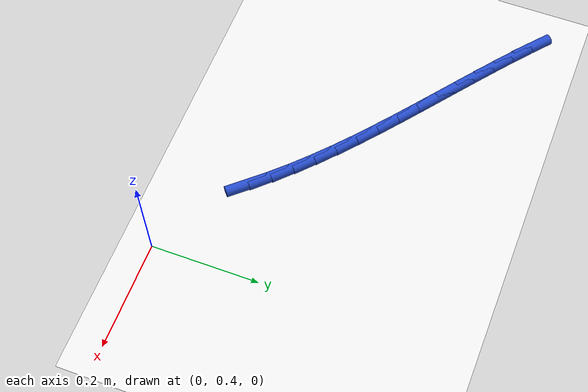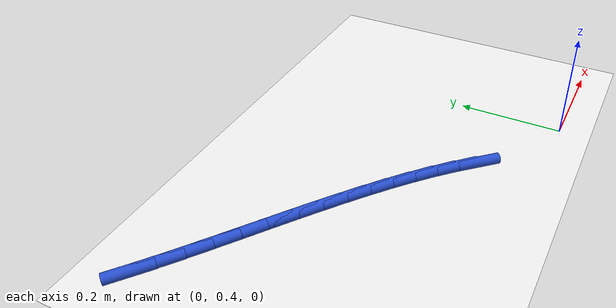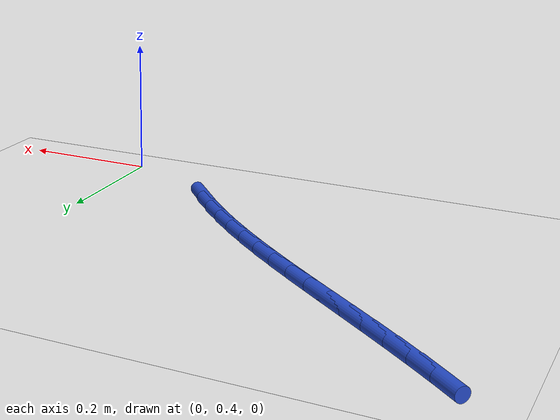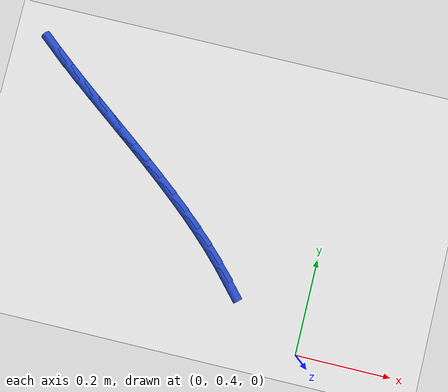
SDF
<sdf version="1.6">
 <world name="default">
  <model name="ground_plane">
   <static>1</static>
   <link name="link">
    <collision name="collision">
     <geometry><plane><normal>0 0 1</normal><size>100 100</size></plane></geometry>
     <surface><friction><ode><mu>100</mu><mu2>50</mu2></ode></friction></surface>
    </collision>
    <visual name="visual">
     <cast_shadows>0</cast_shadows>
     <geometry><plane><normal>0 0 1</normal><size>100 100</size></plane></geometry>
     <material>
      <script><uri>file://media/materials/scripts/gazebo.material</uri><name>Gazebo/WhiteGlow</name></script>
     </material>
    </visual>
   </link>
  </model>
  <model name="line">
   <link name="link_13">
    <pose>-0.16780703248059795 0.5103948826643905 0.01 0 1.57 -0.8433225476517466</pose>
    <collision name="collision">
     <geometry><cylinder><radius>0.01</radius><length>0.08</length></cylinder></geometry>
    </collision>
    <visual name="visual">
     <material>
      <script><name>Gazebo/Blue</name><uri>file://media/materials/scripts/gazebo.material</uri></script>
     </material>
     <geometry><cylinder><radius>0.01</radius><length>0.08</length></cylinder></geometry>
    </visual>
   </link>
   <link name="link_14">
    <pose>-0.19561371793833351 0.5416250725158849 0.01 0 1.57 -0.80138178652893</pose>
    <collision name="collision">
     <geometry><cylinder><radius>0.01</radius><length>0.08</length></cylinder></geometry>
    </collision>
    <visual name="visual">
     <material>
      <script><name>Gazebo/Blue</name><uri>file://media/materials/scripts/gazebo.material</uri></script>
     </material>
     <geometry><cylinder><radius>0.01</radius><length>0.08</length></cylinder></geometry>
    </visual>
   </link>
   <link name="link_15">
    <pose>-0.2249537302056891 0.5719183215355734 0.01 0 1.57 -0.7649317041077852</pose>
    <collision name="collision">
     <geometry><cylinder><radius>0.01</radius><length>0.08</length></cylinder></geometry>
    </collision>
    <visual name="visual">
     <material>
      <script><name>Gazebo/Blue</name><uri>file://media/materials/scripts/gazebo.material</uri></script>
     </material>
     <geometry><cylinder><radius>0.01</radius><length>0.08</length></cylinder></geometry>
    </visual>
   </link>
   <link name="link_16">
    <pose>-0.2556542786188917 0.6013872419924183 0.01 0 1.57 -0.7338145800664079</pose>
    <collision name="collision">
     <geometry><cylinder><radius>0.01</radius><length>0.08</length></cylinder></geometry>
    </collision>
    <visual name="visual">
     <material>
      <script><name>Gazebo/Blue</name><uri>file://media/materials/scripts/gazebo.material</uri></script>
     </material>
     <geometry><cylinder><radius>0.01</radius><length>0.08</length></cylinder></geometry>
    </visual>
   </link>
   <link name="link_17">
    <pose>-0.2875425725141685 0.6301444461553818 0.01 0 1.57 -0.7078428669132037</pose>
    <collision name="collision">
     <geometry><cylinder><radius>0.01</radius><length>0.08</length></cylinder></geometry>
    </collision>
    <visual name="visual">
     <material>
      <script><name>Gazebo/Blue</name><uri>file://media/materials/scripts/gazebo.material</uri></script>
     </material>
     <geometry><cylinder><radius>0.01</radius><length>0.08</length></cylinder></geometry>
    </visual>
   </link>
   <link name="link_18">
    <pose>-0.32044582122774656 0.6583025462934258 0.01 0 1.57 -0.6868242028342659</pose>
    <collision name="collision">
     <geometry><cylinder><radius>0.01</radius><length>0.08</length></cylinder></geometry>
    </collision>
    <visual name="visual">
     <material>
      <script><name>Gazebo/Blue</name><uri>file://media/materials/scripts/gazebo.material</uri></script>
     </material>
     <geometry><cylinder><radius>0.01</radius><length>0.08</length></cylinder></geometry>
    </visual>
   </link>
   <link name="link_19">
    <pose>-0.35419123409585307 0.6859741546755121 0.01 0 1.57 -0.6705794047479512</pose>
    <collision name="collision">
     <geometry><cylinder><radius>0.01</radius><length>0.08</length></cylinder></geometry>
    </collision>
    <visual name="visual">
     <material>
      <script><name>Gazebo/Blue</name><uri>file://media/materials/scripts/gazebo.material</uri></script>
     </material>
     <geometry><cylinder><radius>0.01</radius><length>0.08</length></cylinder></geometry>
    </visual>
   </link>
   <link name="link_20">
    <pose>-0.38860602045471504 0.7132718835706032 0.01 0 1.57 -0.6589547551014436</pose>
    <collision name="collision">
     <geometry><cylinder><radius>0.01</radius><length>0.08</length></cylinder></geometry>
    </collision>
    <visual name="visual">
     <material>
      <script><name>Gazebo/Blue</name><uri>file://media/materials/scripts/gazebo.material</uri></script>
     </material>
     <geometry><cylinder><radius>0.01</radius><length>0.08</length></cylinder></geometry>
    </visual>
   </link>
   <link name="link_21">
    <pose>-0.42351738964055985 0.7403083452476616 0.01 0 1.57 -0.6518299279442448</pose>
    <collision name="collision">
     <geometry><cylinder><radius>0.01</radius><length>0.08</length></cylinder></geometry>
    </collision>
    <visual name="visual">
     <material>
      <script><name>Gazebo/Blue</name><uri>file://media/materials/scripts/gazebo.material</uri></script>
     </material>
     <geometry><cylinder><radius>0.01</radius><length>0.08</length></cylinder></geometry>
    </visual>
   </link>
   <link name="link_22">
    <pose>-0.45875255098961426 0.7671961519756487 0.01 0 1.57 -0.6491226973160237</pose>
    <collision name="collision">
     <geometry><cylinder><radius>0.01</radius><length>0.08</length></cylinder></geometry>
    </collision>
    <visual name="visual">
     <material>
      <script><name>Gazebo/Blue</name><uri>file://media/materials/scripts/gazebo.material</uri></script>
     </material>
     <geometry><cylinder><radius>0.01</radius><length>0.08</length></cylinder></geometry>
    </visual>
   </link>
   <link name="link_23">
    <pose>-0.4941387138381055 0.7940479160235268 0.01 0 1.57 -0.6507912752699311</pose>
    <collision name="collision">
     <geometry><cylinder><radius>0.01</radius><length>0.08</length></cylinder></geometry>
    </collision>
    <visual name="visual">
     <material>
      <script><name>Gazebo/Blue</name><uri>file://media/materials/scripts/gazebo.material</uri></script>
     </material>
     <geometry><cylinder><radius>0.01</radius><length>0.08</length></cylinder></geometry>
    </visual>
   </link>
   <link name="link_24">
    <pose>-0.5295030875222605 0.8209762496602578 0.01 0 1.57 -0.656834811406058</pose>
    <collision name="collision">
     <geometry><cylinder><radius>0.01</radius><length>0.08</length></cylinder></geometry>
    </collision>
    <visual name="visual">
     <material>
      <script><name>Gazebo/Blue</name><uri>file://media/materials/scripts/gazebo.material</uri></script>
     </material>
     <geometry><cylinder><radius>0.01</radius><length>0.08</length></cylinder></geometry>
    </visual>
   </link>
   <link name="link_25">
    <pose>-0.5646728813783068 0.8480937651548044 0.01 0 1.57 -0.6672922797007735</pose>
    <collision name="collision">
     <geometry><cylinder><radius>0.01</radius><length>0.08</length></cylinder></geometry>
    </collision>
    <visual name="visual">
     <material>
      <script><name>Gazebo/Blue</name><uri>file://media/materials/scripts/gazebo.material</uri></script>
     </material>
     <geometry><cylinder><radius>0.01</radius><length>0.08</length></cylinder></geometry>
    </visual>
   </link>
   <link name="link_26">
    <pose>-0.5994753047424713 0.8755130747761283 0.01 0 1.57 -0.6822396869788577</pose>
    <collision name="collision">
     <geometry><cylinder><radius>0.01</radius><length>0.08</length></cylinder></geometry>
    </collision>
    <visual name="visual">
     <material>
      <script><name>Gazebo/Blue</name><uri>file://media/materials/scripts/gazebo.material</uri></script>
     </material>
     <geometry><cylinder><radius>0.01</radius><length>0.08</length></cylinder></geometry>
    </visual>
   </link>
   <link name="link_27">
    <pose>-0.6337375669509808 0.9033467907931914 0.01 0 1.57 -0.7015863751057289</pose>
    <collision name="collision">
     <geometry><cylinder><radius>0.01</radius><length>0.08</length></cylinder></geometry>
    </collision>
    <visual name="visual">
     <material>
      <script><name>Gazebo/Blue</name><uri>file://media/materials/scripts/gazebo.material</uri></script>
     </material>
     <geometry><cylinder><radius>0.01</radius><length>0.08</length></cylinder></geometry>
    </visual>
   </link>
  </model>
 </world>
</sdf>
